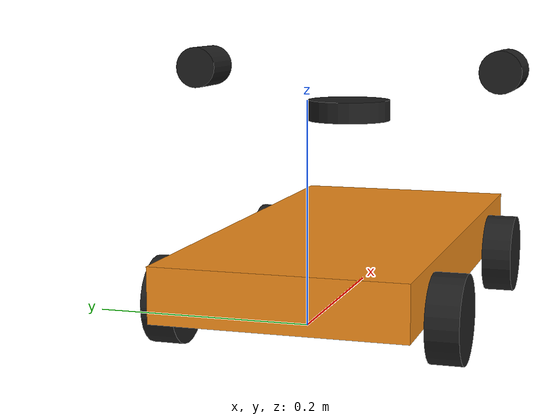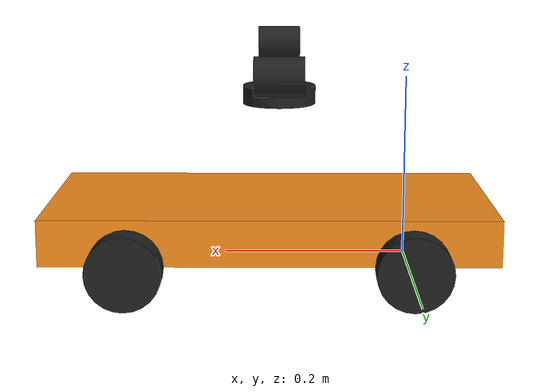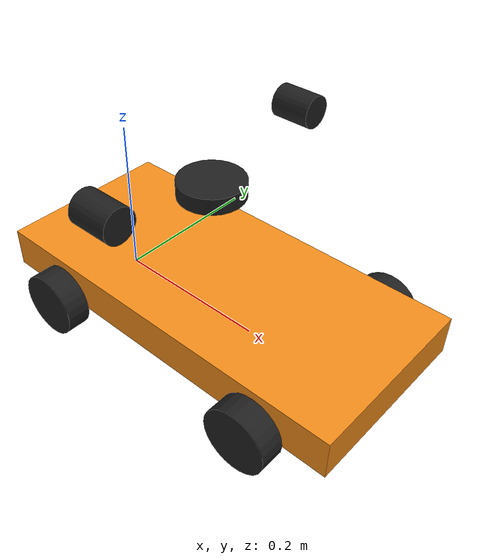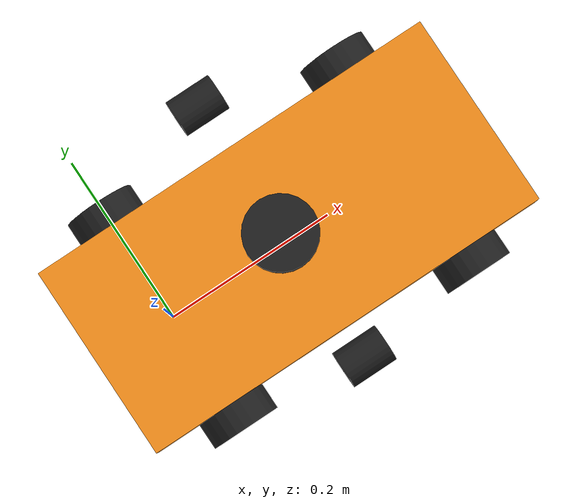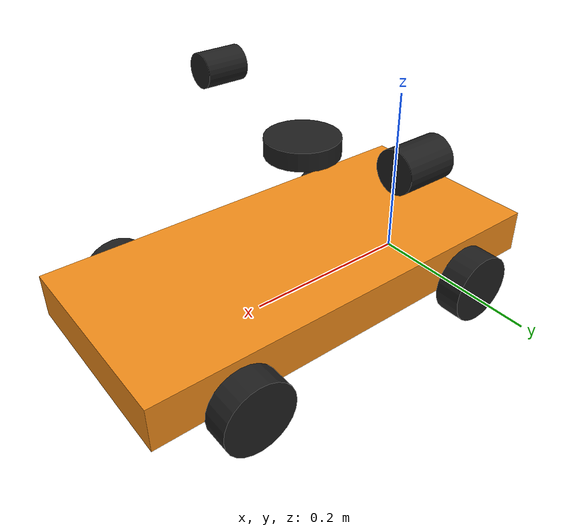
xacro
<?xml version="1.0"?>

<robot name="my_robot" xmlns:xacro="http://www.ros.org/wiki/xacro">

  <xacro:property name="wheel_width" value="0.03" />
  <xacro:property name="wheel_radius" value="0.04" />
  <xacro:property name="wheel_mass" value="0.056" />

  <xacro:property name="wheel_chassis_bias" value="${wheel_width/2}" />

  <!-- Just to be visible =) -->
  <xacro:property name="lidar_height" value="0.02"/>
  <xacro:property name="lidar_radius" value="0.04"/>
  <!-- Taken from physical parameters (wr8_software/launch/base/lidar.launch) -->
  <xacro:property name="base_link_2_laser_xyz" value="0.14 0 0.14" />

  <xacro:property name="chassis_mass" value="3.7" />
  <xacro:property name="chassis_length" value="0.485" />
  <xacro:property name="chassis_width" value="0.227" />
  <xacro:property name="chassis_height" value="0.05" />

  <xacro:property name="wheelbase" value="0.3" />
  <xacro:property name="half_wheelbase" value="${wheelbase/2}" />

  <xacro:property name="half_track_width" value="${(chassis_width/2 + wheel_chassis_bias)}" />

  <xacro:property name="lidar_mass" value="0.1" />

  <!-- https://github.com/jbpassot/ackermann_vehicle/blob/master/ackermann_vehicle_description/urdf/em_3905.urdf.xacro -->
  <xacro:property name="degrees_45" value="${pi/4}"/>
  <xacro:property name="degrees_90" value="${pi/2}"/>

  <!-- ~0.5 rad -->
  <xacro:property name="degrees_30" value="${pi/6}"/>
  <xacro:property name="mid_wheel_turn_limit" value="${degrees_30}"/>
  <xacro:property name="wheel_turn_limit" value="${degrees_45}"/>

  <xacro:property name="wheel_friction" value="1.75" />

  <!-- camera properties -->
  <xacro:property name="cam_height" value="0.05"/>
  <xacro:property name="cam_radius" value="0.02"/>
  <xacro:property name="cam_mass" value="0.05"/>
  <xacro:property name="base_link_lcam_xyz" value="0.14 0.15 0.18"/>
  <xacro:property name="base_link_rcam_xyz" value="0.14 -0.15 0.18"/>

  <xacro:arg name="pub_tf" default="true" />
  <xacro:arg name="robot_name" default="robot" />

  <!-- Gazebo plugins -->
  <gazebo>

    <!-- Simulated vehicle interface -->
    <plugin name="wr8_interface_plugin" filename="libwr8_interface_plugin.so" >
      <robotName>$(arg robot_name)</robotName>
      <pubTf>$(arg pub_tf)</pubTf>
      <tfFreq>100.0</tfFreq>
      <maxSteerRad>${mid_wheel_turn_limit}</maxSteerRad>
      <wheelbase>${wheelbase}</wheelbase>
      <wheelRadius>${wheel_radius}</wheelRadius>
      <trackWidth>${half_track_width*2}</trackWidth>
    </plugin>

    <!-- Publish current joint angles -->
    <plugin name="joint_state_publisher" filename="libgazebo_ros_joint_state_publisher.so">
        <robotNamespace>$(arg robot_name)</robotNamespace>
        <jointName>
            fl_steer_joint,
            fr_steer_joint,
            fl_speed_joint,
            fr_speed_joint,
            rl_speed_joint,
            rr_speed_joint
        </jointName>
        <updateRate>100</updateRate>
        <alwaysOn>true</alwaysOn>
    </plugin>
  </gazebo>

  <!-- INERTIAL MACROS -->
  <xacro:macro name="null_inertial">
    <inertial>
      <mass value="0.001"/>
      <inertia ixx="0.001" ixy="0" ixz="0"
               iyy="0.001" iyz="0"
               izz="0.001"/>
    </inertial>
  </xacro:macro>

  <xacro:macro name="solid_cuboid_inertial"
               params="width length height mass *origin">
    <inertial>
      <xacro:insert_block name="origin"/>
      <mass value="${mass}"/>
      <inertia ixx="${mass * (width * width + height * height) / 12}"
               ixy="0" ixz="0"
               iyy="${mass * (length * length + height * height) / 12}"
               iyz="0"
               izz="${mass * (width * width + length * length) / 12}"/>
    </inertial>
  </xacro:macro>

  <xacro:macro name="solid_cylinder_inertial"
               params="r h mass *origin">
    <inertial>
      <xacro:insert_block name="origin"/>
      <mass value="${mass}"/>
      <inertia ixx="${mass / 12 * (3 * r * r + h * h)}" ixy="0.0" ixz="0.0"
               iyy="${mass / 12 * (3 * r * r + h * h)}" iyz="0.0"
               izz="${mass / 2 * r * r}" />
    </inertial>
  </xacro:macro>
  <!-- INERTIAL MACROS END -->

  <xacro:macro name="wheel_object" params="name">
    <link name="${name}">
      <visual>
        <origin xyz="0 0 0" rpy="0 0 0" />
        <geometry>
          <cylinder length="${wheel_width}" radius="${wheel_radius}"/>
        </geometry>
      </visual>

      <collision>
        <origin xyz="0 0 0" rpy="0 0 0" />
        <geometry>
          <cylinder length="${wheel_width}" radius="${wheel_radius}"/>
        </geometry>
      </collision>

      <xacro:solid_cylinder_inertial
          r="${wheel_radius}" h="${wheel_width}"
          mass="${wheel_mass}" >
        <origin xyz="0 0 0" rpy="0 0 0" />
      </xacro:solid_cylinder_inertial>
    </link>

    <gazebo reference="${name}">
      <mu1>${wheel_friction}</mu1>
      <mu2>${wheel_friction}</mu2>
      <material>Gazebo/Black</material>
      <kp>10000000</kp>
      <kd>1</kd>
    </gazebo>
  </xacro:macro>

  <xacro:macro name="speed_wheel" params="name base_name xyz ">
    <xacro:wheel_object name="wheel_${name}" />

    <joint name="${name}_speed_joint" type="continuous">
      <parent link="${base_name}"/>
      <child link="wheel_${name}"/>
      <origin xyz="${xyz}" rpy="${pi/2} 0 0"/>
      <axis xyz="0 0 -1"/>
      <limit effort="1000.0" velocity="22.0" />
    </joint>
  </xacro:macro>

  <xacro:macro name="steer_wheel" params="name base_name xyz">
    <xacro:wheel_object name="wheel_${name}" />

    <link name="steer_${name}">
      <xacro:null_inertial/>
    </link>

    <joint name="${name}_steer_joint" type="revolute">
      <limit lower="${-wheel_turn_limit}"
             upper="${wheel_turn_limit}"
             effort="0" velocity="0"/>
      <parent link="${base_name}"/>
      <child link="steer_${name}"/>
      <origin xyz="${xyz}" rpy="0 0 0"/>
      <axis xyz="0 0 1"/>
    </joint>

    <joint name="${name}_speed_joint" type="continuous">
      <parent link="steer_${name}"/>
      <child link="wheel_${name}"/>
      <origin xyz="0 0 0" rpy="${pi/2} 0 0"/>
      <axis xyz="0 0 -1"/>
      <limit effort="1000.0" velocity="22.0" />
    </joint>

  </xacro:macro>

  <!-- base_footprint - base_link on floor -->
  <link name="base_footprint">
  </link>
  <gazebo reference="base_footprint"/>

  <link name="base_link">
  </link>
  <gazebo reference="base_link"/>

  <link name="base_center">
    <visual>
      <origin xyz="0 0 0" rpy="0 0 0" />
      <geometry>
        <box size="${chassis_length} ${chassis_width} ${chassis_height}"/>
      </geometry>
    </visual>
    <collision>
      <origin xyz="0 0 0" rpy="0 0 0" />
      <geometry>
        <box size="${chassis_length} ${chassis_width} ${chassis_height}"/>
      </geometry>
    </collision>
    <xacro:solid_cuboid_inertial
          length="${chassis_length}" width="${chassis_width}"
          height="${chassis_height}" mass="${chassis_mass}">
      <origin xyz="0 0 0" rpy="0 0 0" />
    </xacro:solid_cuboid_inertial>
  </link>
  <gazebo reference="base_center">
      <material>Gazebo/Orange</material>
  </gazebo>

  <joint name="base_footprint_2_link" type="fixed">
    <parent link="base_footprint"/>
    <child link="base_link"/>
    <!-- base_footprint - base_link on floor -->
    <origin xyz="0 0 ${wheel_radius}" rpy="0 0 0"/>
  </joint>

  <joint name="base_link_2_center" type="fixed">
    <parent link="base_link"/>
    <child link="base_center"/>
    <origin xyz="${wheelbase/2} 0 0" rpy="0 0 0"/>
  </joint>

  <xacro:speed_wheel name="rl" base_name="base_center"
                     xyz="${-half_wheelbase} ${-half_track_width} ${-chassis_height/2}" />
  <xacro:speed_wheel name="rr" base_name="base_center"
                     xyz="${-half_wheelbase} ${half_track_width} ${-chassis_height/2}" />
  <xacro:steer_wheel name="fl" base_name="base_center"
                     xyz="${half_wheelbase} ${-half_track_width} ${-chassis_height/2}" />
  <xacro:steer_wheel name="fr" base_name="base_center"
                     xyz="${half_wheelbase} ${half_track_width} ${-chassis_height/2}" />

  <!-- Setup LIDAR -->
  <link name="laser_frame">
    <xacro:solid_cylinder_inertial
        r="${lidar_radius}" h="${lidar_height}"
        mass="${lidar_mass}" >
      <origin xyz="0 0 0" rpy="0 0 0" />
    </xacro:solid_cylinder_inertial>
    <collision>
      <origin xyz="0 0 0" rpy="0 0 0" />
      <geometry>
        <cylinder length="${lidar_height}" radius="${lidar_radius}"/>
      </geometry>
    </collision>
    <visual>
      <origin xyz="0 0 0" rpy="0 0 0" />
      <geometry>
        <cylinder length="${lidar_height}" radius="${lidar_radius}"/>
      </geometry>
    </visual>
  </link>

  <joint name="laser_joint" type="fixed">
    <child link="laser_frame" />
    <parent link="base_link" />
    <origin xyz="${base_link_2_laser_xyz}" />
  </joint>

  <gazebo reference="laser_frame">
    <material>Gazebo/Black</material>

    <sensor type="ray" name="head_hokuyo_sensor">
      <visualize>true</visualize>
      <update_rate>7.5</update_rate>
      <ray>
        <scan>
          <horizontal>
            <samples>360</samples>
            <resolution>1</resolution>
            <min_angle>${-pi}</min_angle>
            <max_angle>${pi}</max_angle>
          </horizontal>
        </scan>
        <range>
          <min>0.15</min>
          <max>10.0</max>
          <resolution>0.01</resolution>
        </range>
        <noise>
          <type>gaussian</type>
          <mean>0.0</mean>
          <stddev>0.01</stddev>
        </noise>
      </ray>
      <plugin name="gazebo_ros_head_hokuyo_controller" filename="libgazebo_ros_laser.so">
        <topicName>$(arg robot_name)/scan</topicName>
        <frameName>laser_frame</frameName>
      </plugin>
    </sensor>
  </gazebo>

  <!-- camera macro -->
  <xacro:macro name="single_camera" params="name base_link">
    <link name="${name}_frame">
      <xacro:solid_cylinder_inertial
          r="${cam_radius}" h="${cam_height}"
          mass="${cam_mass}" >
        <origin xyz="0 0 0" rpy="0 ${degrees_90} 0" />
      </xacro:solid_cylinder_inertial>
      <collision>
        <origin xyz="0 0 0" rpy="0 ${degrees_90} 0" />
        <geometry>
          <cylinder length="${cam_height}" radius="${cam_radius}"/>
        </geometry>
      </collision>
      <visual>
        <origin xyz="0 0 0" rpy="0 ${degrees_90} 0" />
        <geometry>
          <cylinder length="${cam_height}" radius="${cam_radius}"/>
        </geometry>
      </visual>
    </link>

    <joint name="${name}_joint" type="fixed">
      <child link="${name}_frame" />
      <parent link="base_link" />
      <origin xyz="${base_link}" />
    </joint>

    <gazebo reference="${name}_frame">
      <material>Gazebo/Black</material>

      <sensor type="camera" name="${name}">
        <!-- required FPS -->
        <update_rate>15.0</update_rate>
        <camera name="${name}">
          <horizontal_fov>1.3962634</horizontal_fov>
          <image>
            <width>800</width>
            <height>800</height>
            <format>R8G8B8</format>
          </image>
          <clip>
            <near>0.02</near>
            <far>300</far>
          </clip>
          <noise>
            <type>gaussian</type>
            <mean>0.0</mean>
            <stddev>0.007</stddev>
        </noise>
        </camera>
        <plugin name="${name}_controller" filename="libgazebo_ros_camera.so">
          <alwaysOn>true</alwaysOn>
          <updateRate>0.0</updateRate>
          <cameraName>$(arg robot_name)/${name}</cameraName>
          <imageTopicName>cam_image_raw</imageTopicName>
          <cameraInfoTopicName>cam_info</cameraInfoTopicName>
          <frameName>lcam_frame</frameName>
          <hackBaseline>0.07</hackBaseline>
          <distortionK1>0.0</distortionK1>
          <distortionK2>0.0</distortionK2>
          <distortionK3>0.0</distortionK3>
          <distortionT1>0.0</distortionT1>
          <distortionT2>0.0</distortionT2>
        </plugin>
      </sensor>
    </gazebo>
  </xacro:macro>

  <xacro:single_camera name="lcam" base_link="${base_link_lcam_xyz}" />
  <xacro:single_camera name="rcam" base_link="${base_link_rcam_xyz}" />

</robot>
